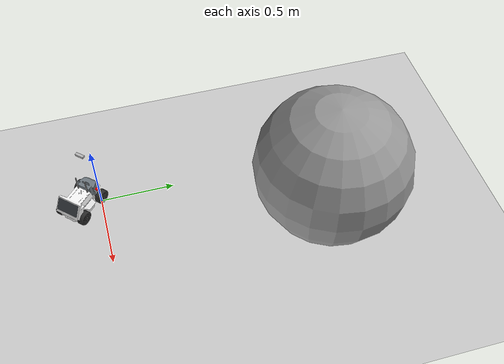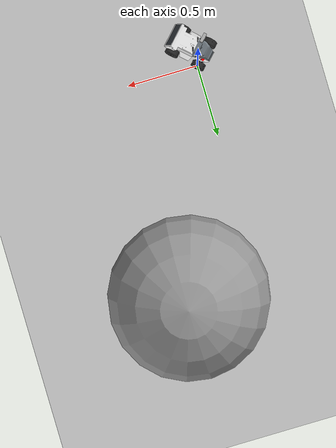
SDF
<sdf version="1.7">
 <world name="default">
  <light name="sun" type="directional">
   <pose>0 0 10 0 -0 0</pose>
   <diffuse>0.8 0.8 0.8 1</diffuse>
   <specular>0.2 0.2 0.2 1</specular>
   <attenuation>
    <range>1000</range>
    <constant>0.9</constant>
    <linear>0.01</linear>
    <quadratic>0.001</quadratic>
   </attenuation>
   <direction>-0.5 0.1 -0.9</direction>
   <spot><inner_angle>0</inner_angle><outer_angle>0</outer_angle><falloff>0</falloff></spot>
  </light>
  <model name="ground_plane">
   <static>1</static>
   <link name="link">
    <collision name="collision">
     <geometry><plane><normal>0 0 1</normal><size>100 100</size></plane></geometry>
     <surface><friction><ode><mu>100</mu><mu2>50</mu2></ode></friction></surface>
    </collision>
    <visual name="visual">
     <cast_shadows>0</cast_shadows>
     <geometry><plane><normal>0 0 1</normal><size>100 100</size></plane></geometry>
     <material>
      <script><uri>file://media/materials/scripts/gazebo.material</uri><name>Gazebo/Grey</name></script>
     </material>
    </visual>
   </link>
  </model>
  <gravity>0 0 -9.8</gravity>
  <magnetic_field>6e-06 2.3e-05 -4.2e-05</magnetic_field>
  <atmosphere type="adiabatic"/>
  <physics type="ode">
   <max_step_size>0.001</max_step_size>
   <real_time_factor>1</real_time_factor>
   <real_time_update_rate>1000</real_time_update_rate>
  </physics>
  <scene><ambient>0.4 0.4 0.4 1</ambient><background>0.7 0.7 0.7 1</background><shadows>1</shadows></scene>
  <audio><device>default</device></audio>
  <spherical_coordinates>
   <surface_model>EARTH_WGS84</surface_model>
   <latitude_deg>0</latitude_deg>
   <longitude_deg>0</longitude_deg>
   <elevation>0</elevation>
   <heading_deg>0</heading_deg>
  </spherical_coordinates>
  <model name="limo_description">
   <link name="base_footprint">
    <inertial>
     <pose>0.007905 0 0.160821 0 -0 0</pose>
     <mass>2.3657</mass>
     <inertia>
      <ixx>0.248941</ixx>
      <ixy>0</ixy>
      <ixz>-0.00196744</ixz>
      <iyy>0.970559</iyy>
      <iyz>0</iyz>
      <izz>0.961621</izz>
     </inertia>
    </inertial>
    <collision name="base_footprint_fixed_joint_lump__base_link_collision">
     <pose>0 0 0.15 0 -0 0</pose>
     <geometry><box><size>0.13 0.12 0.1</size></box></geometry>
    </collision>
    <collision name="base_footprint_fixed_joint_lump__depth_camera_collision_collision_1">
     <pose>0.084 0 0.45 0 -0 0</pose>
     <geometry><box><size>0.02 0.06 0.015</size></box></geometry>
    </collision>
    <collision name="base_footprint_fixed_joint_lump__imu_collision_collision_2">
     <pose>0 0 0.05 0 -0 0</pose>
     <geometry><box><size>0.001 0.001 0.001</size></box></geometry>
    </collision>
    <collision name="base_footprint_fixed_joint_lump__laser_collision_collision_3">
     <pose>0.103 0 0.116 0 -0 0</pose>
     <geometry><cylinder><length>0.016</length><radius>0.032</radius></cylinder></geometry>
    </collision>
    <visual name="base_footprint_fixed_joint_lump__base_link_visual">
     <pose>0 0 0 0 -0 1.57</pose>
     <geometry>
      <mesh>
       <scale>1 1 1</scale>
       <uri>file:///home/agilex/agilex_ws/install/limo_description/share/limo_description/meshes/limo_base.dae</uri>
      </mesh>
     </geometry>
    </visual>
    <visual name="base_footprint_fixed_joint_lump__depth_camera_visual_visual_1">
     <pose>0.084 0 0.45 0 -0 0</pose>
     <geometry><box><size>0.02 0.06 0.015</size></box></geometry>
    </visual>
    <visual name="base_footprint_fixed_joint_lump__imu_visual_visual_2">
     <pose>0 0 0.05 0 -0 0</pose>
     <geometry><box><size>0.001 0.001 0.001</size></box></geometry>
    </visual>
    <visual name="base_footprint_fixed_joint_lump__laser_visual_visual_3">
     <pose>0.103 0 0.116 0 -0 0</pose>
     <geometry><cylinder><length>0.01</length><radius>0.02</radius></cylinder></geometry>
    </visual>
    <sensor name="twr_imu" type="imu">
     <always_on>1</always_on>
     <update_rate>100</update_rate>
     <visualize>1</visualize>
     <imu>
      <angular_velocity>
       <x><noise type="gaussian"><mean>0</mean><stddev>0.0002</stddev></noise></x>
       <y><noise type="gaussian"><mean>0</mean><stddev>0.0002</stddev></noise></y>
       <z><noise type="gaussian"><mean>0</mean><stddev>0.0002</stddev></noise></z>
      </angular_velocity>
      <linear_acceleration>
       <x><noise type="gaussian"><mean>0</mean><stddev>0.017</stddev></noise></x>
       <y><noise type="gaussian"><mean>0</mean><stddev>0.017</stddev></noise></y>
       <z><noise type="gaussian"><mean>0</mean><stddev>0.017</stddev></noise></z>
      </linear_acceleration>
      <orientation>
       <x><noise type="gaussian"><mean>0.0</mean><stddev>2e-3</stddev></noise></x>
       <y><noise type="gaussian"><mean>0.0</mean><stddev>2e-3</stddev></noise></y>
       <z><noise type="gaussian"><mean>0.0</mean><stddev>2e-3</stddev></noise></z>
      </orientation>
     </imu>
     <plugin name="two_wheeled_robot_imu" filename="libgazebo_ros_imu_sensor.so">
      <initial_orientation_as_reference>0</initial_orientation_as_reference>
      <frame_name>imu_link</frame_name>
      <ros><namespace>/imu</namespace><remapping>~/out:=data</remapping></ros>
     </plugin>
     <pose>0 0 0.05 0 -0 0</pose>
    </sensor>
    <sensor name="laser" type="ray">
     <always_on>1</always_on>
     <visualize>1</visualize>
     <update_rate>10</update_rate>
     <ray>
      <scan>
       <horizontal>
        <samples>120</samples>
        <resolution>1</resolution>
        <min_angle>-3.14159</min_angle>
        <max_angle>3.14159</max_angle>
       </horizontal>
       <vertical><samples>1</samples><min_angle>0</min_angle><max_angle>0</max_angle></vertical>
      </scan>
      <range><min>0.3</min><max>15</max><resolution>0.015</resolution></range>
      <noise><type>gaussian</type><mean>0</mean><stddev>0.01</stddev></noise>
     </ray>
     <plugin name="scan" filename="libgazebo_ros_ray_sensor.so">
      <ros><remapping>~/out:=scan</remapping></ros>
      <output_type>sensor_msgs/LaserScan</output_type>
      <frame_name>laser_link</frame_name>
     </plugin>
     <pose>0.103 0 0.116 0 -0 0</pose>
    </sensor>
   </link>
   <joint name="front_left_wheel" type="revolute">
    <pose relative_to="base_footprint">0.1 0.065 0.05 0 -0 0</pose>
    <parent>base_footprint</parent>
    <child>front_left_wheel_link</child>
    <axis>
     <xyz>0 1 0</xyz>
     <limit><lower>-1e+16</lower><upper>1e+16</upper></limit>
     <dynamics><spring_reference>0</spring_reference><spring_stiffness>0</spring_stiffness></dynamics>
    </axis>
    <physics><ode><limit><cfm>0</cfm><erp>0.2</erp></limit></ode></physics>
   </joint>
   <link name="front_left_wheel_link">
    <pose relative_to="front_left_wheel">0 0 0 0 -0 0</pose>
    <inertial>
     <mass>0.5</mass>
     <inertia><ixx>0.01055</ixx><ixy>0</ixy><ixz>0</ixz><iyy>0.00075</iyy><iyz>0</iyz><izz>0.01055</izz></inertia>
    </inertial>
    <collision name="front_left_wheel_link_collision">
     <pose>0 0.0225 0 1.57 -0 0</pose>
     <geometry><cylinder><length>0.045</length><radius>0.045</radius></cylinder></geometry>
    </collision>
    <visual name="front_left_wheel_link_visual">
     <geometry>
      <mesh>
       <scale>1 1 1</scale>
       <uri>file:///home/agilex/agilex_ws/install/limo_description/share/limo_description/meshes/limo_wheel.dae</uri>
      </mesh>
     </geometry>
    </visual>
   </link>
   <joint name="front_right_wheel" type="revolute">
    <pose relative_to="base_footprint">0.1 -0.065 0.05 3.14159 -0 0</pose>
    <parent>base_footprint</parent>
    <child>front_right_wheel_link</child>
    <axis>
     <xyz>0 -1 0</xyz>
     <limit><lower>-1e+16</lower><upper>1e+16</upper></limit>
     <dynamics><spring_reference>0</spring_reference><spring_stiffness>0</spring_stiffness></dynamics>
    </axis>
    <physics><ode><limit><cfm>0</cfm><erp>0.2</erp></limit></ode></physics>
   </joint>
   <link name="front_right_wheel_link">
    <pose relative_to="front_right_wheel">0 0 0 0 -0 0</pose>
    <inertial>
     <mass>0.5</mass>
     <inertia><ixx>0.01055</ixx><ixy>0</ixy><ixz>0</ixz><iyy>0.00075</iyy><iyz>0</iyz><izz>0.01055</izz></inertia>
    </inertial>
    <collision name="front_right_wheel_link_collision">
     <pose>0 0.0225 0 1.57 -0 0</pose>
     <geometry><cylinder><length>0.045</length><radius>0.045</radius></cylinder></geometry>
    </collision>
    <visual name="front_right_wheel_link_visual">
     <geometry>
      <mesh>
       <scale>1 1 1</scale>
       <uri>file:///home/agilex/agilex_ws/install/limo_description/share/limo_description/meshes/limo_wheel.dae</uri>
      </mesh>
     </geometry>
    </visual>
   </link>
   <joint name="rear_left_wheel" type="revolute">
    <pose relative_to="base_footprint">-0.1 0.065 0.05 0 -0 0</pose>
    <parent>base_footprint</parent>
    <child>rear_left_wheel_link</child>
    <axis>
     <xyz>0 1 0</xyz>
     <limit><lower>-1e+16</lower><upper>1e+16</upper></limit>
     <dynamics><spring_reference>0</spring_reference><spring_stiffness>0</spring_stiffness></dynamics>
    </axis>
    <physics><ode><limit><cfm>0</cfm><erp>0.2</erp></limit></ode></physics>
   </joint>
   <link name="rear_left_wheel_link">
    <pose relative_to="rear_left_wheel">0 0 0 0 -0 0</pose>
    <inertial>
     <mass>0.5</mass>
     <inertia><ixx>0.01055</ixx><ixy>0</ixy><ixz>0</ixz><iyy>0.00075</iyy><iyz>0</iyz><izz>0.01055</izz></inertia>
    </inertial>
    <collision name="rear_left_wheel_link_collision">
     <pose>0 0.0225 0 1.57 -0 0</pose>
     <geometry><cylinder><length>0.045</length><radius>0.045</radius></cylinder></geometry>
    </collision>
    <visual name="rear_left_wheel_link_visual">
     <geometry>
      <mesh>
       <scale>1 1 1</scale>
       <uri>file:///home/agilex/agilex_ws/install/limo_description/share/limo_description/meshes/limo_wheel.dae</uri>
      </mesh>
     </geometry>
    </visual>
   </link>
   <joint name="rear_right_wheel" type="revolute">
    <pose relative_to="base_footprint">-0.1 -0.065 0.05 3.14159 -0 0</pose>
    <parent>base_footprint</parent>
    <child>rear_right_wheel_link</child>
    <axis>
     <xyz>0 -1 0</xyz>
     <limit><lower>-1e+16</lower><upper>1e+16</upper></limit>
     <dynamics><spring_reference>0</spring_reference><spring_stiffness>0</spring_stiffness></dynamics>
    </axis>
    <physics><ode><limit><cfm>0</cfm><erp>0.2</erp></limit></ode></physics>
   </joint>
   <link name="rear_right_wheel_link">
    <pose relative_to="rear_right_wheel">0 0 0 0 -0 0</pose>
    <inertial>
     <mass>0.5</mass>
     <inertia><ixx>0.01055</ixx><ixy>0</ixy><ixz>0</ixz><iyy>0.00075</iyy><iyz>0</iyz><izz>0.01055</izz></inertia>
    </inertial>
    <collision name="rear_right_wheel_link_collision">
     <pose>0 0.0225 0 1.57 -0 0</pose>
     <geometry><cylinder><length>0.045</length><radius>0.045</radius></cylinder></geometry>
    </collision>
    <visual name="rear_right_wheel_link_visual">
     <geometry>
      <mesh>
       <scale>1 1 1</scale>
       <uri>file:///home/agilex/agilex_ws/install/limo_description/share/limo_description/meshes/limo_wheel.dae</uri>
      </mesh>
     </geometry>
    </visual>
   </link>
   <static>0</static>
   <plugin name="four_diff_controller" filename="libgazebo_ros_diff_drive.so">
    <update_rate>50</update_rate>
    <num_wheel_pairs>2</num_wheel_pairs>
    <left_joint>front_left_wheel</left_joint>
    <right_joint>front_right_wheel</right_joint>
    <left_joint>rear_left_wheel</left_joint>
    <right_joint>rear_right_wheel</right_joint>
    <wheel_separation>0.172</wheel_separation>
    <wheel_diameter>0.09</wheel_diameter>
    <max_wheel_torque>20</max_wheel_torque>
    <max_wheel_acceleration>1.0</max_wheel_acceleration>
    <command_topic>cmd_vel</command_topic>
    <publish_odom>1</publish_odom>
    <publish_odom_tf>1</publish_odom_tf>
    <publish_wheel_tf>1</publish_wheel_tf>
    <odometry_topic>odom</odometry_topic>
    <odometry_frame>odom</odometry_frame>
    <robot_base_frame>base_footprint</robot_base_frame>
    <odometry_source>1</odometry_source>
    <ros><remapping>odom:=/odometry</remapping></ros>
   </plugin>
   <pose>0.009444 -0.125071 -0.004991 4.4e-05 3.1e-05 2.3848</pose>
  </model>
  <model name="unit_sphere_0">
   <pose>0.483842 1.43719 0.5 0 -0 0</pose>
   <link name="link">
    <inertial>
     <mass>1</mass>
     <inertia><ixx>0.1</ixx><ixy>0</ixy><ixz>0</ixz><iyy>0.1</iyy><iyz>0</iyz><izz>0.1</izz></inertia>
    </inertial>
    <collision name="collision"><geometry><sphere><radius>0.5</radius></sphere></geometry></collision>
    <visual name="visual">
     <geometry><sphere><radius>0.5</radius></sphere></geometry>
     <material>
      <script><name>Gazebo/Grey</name><uri>file://media/materials/scripts/gazebo.material</uri></script>
     </material>
    </visual>
   </link>
  </model>
 </world>
</sdf>
